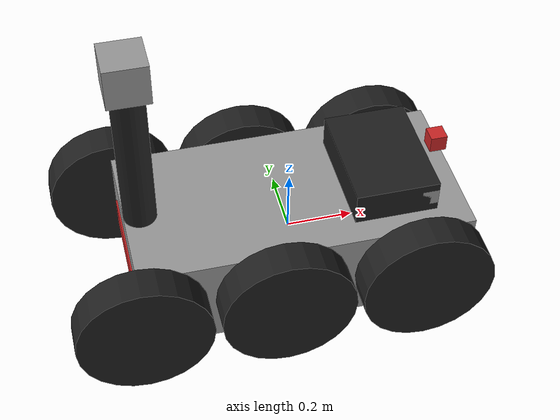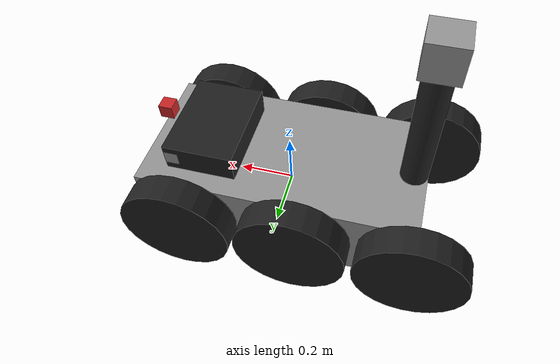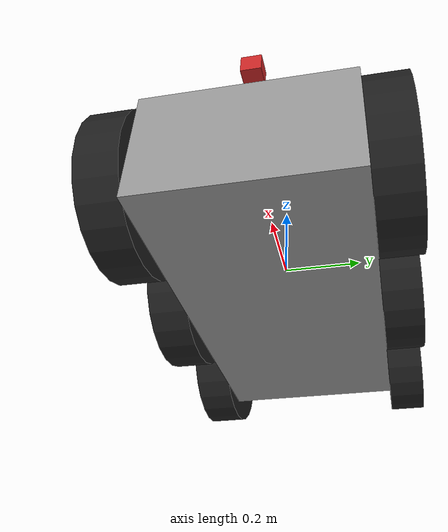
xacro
<?xml version='1.0'?>

<robot name="moor" xmlns:xacro="http://www.ros.org/wiki/xacro">
<xacro:property name="cameraSize" value="0.05"/>
<xacro:property name="DSLRcameraSize" value="0.124"/>
<xacro:property name="cameraMass" value="0.05"/>

<xacro:macro name="default_inertia">
      <inertia ixx="0.001" ixy="0.0" ixz="0.0" iyy="0.001" iyz="0.0" izz="0.001"/>
</xacro:macro>

<xacro:macro name="default_inertia_servos">
      <inertia ixx="0.01" ixy="0.0" ixz="0.0" iyy="0.01" iyz="0.0" izz="0.01"/>
</xacro:macro>

<xacro:macro name="default_limit">
    <limit effort="100.0" lower="-2.62" upper="2.62" velocity="3"/>
</xacro:macro>

<xacro:macro name="default_dynamics">
      <dynamics fricction="0" damping="0" />
</xacro:macro>

  <xacro:include filename="$(find mybot_gazebo)/urdf/mybot.gazebo" />
  <xacro:include filename="$(find mybot_gazebo)/urdf/materials.xacro" />
  <xacro:include filename="$(find mybot_gazebo)/urdf/macros.xacro" />

 <!-- Base Size -->
  <xacro:property name="base_x_size" value="1" />
  <xacro:property name="base_y_size" value="0.5" />
  <xacro:property name="base_z_size" value="0.3" />

  <!-- Wheel Mounting Positions -->
  <xacro:property name="wheelbase" value="0.5120" />
  <xacro:property name="track" value="0.5708" />
  <xacro:property name="wheel_vertical_offset" value="0.03282" />

  <!-- Wheel Properties -->
  <xacro:property name="wheel_length" value="0.1" />
  <xacro:property name="wheel_radius" value="0.2" />
  <link name='base_link'>
    <pose>0 0 0.1 0 0 0</pose>

    <inertial>
      <mass value="15.0"/>
      <origin xyz="0.0 0 0.1" rpy=" 0 0 0"/>
      <inertia
         ixx="0.4233" ixy="0.0" ixz="-0.0" iyy="1.35705" iyz="-0.0" izz="1.55625"
      />
    </inertial>

    <collision name='collision'>
      <geometry>
        <box size="1 .5 .3"/>
      </geometry>
    </collision>

    <visual name='base_link_visual'>
      <origin xyz="0 0 0" rpy=" 0 0 0"/>
      <geometry>
        <box size="1 .5 .3"/>
      </geometry>
        <material name="grey"/>
    </visual>
  </link>

    <!-- Base footprint is on the ground under the robot -->
    <link name="base_footprint"/>

    <joint name="base_footprint_joint" type="fixed">
      <origin xyz="0 0 ${wheel_vertical_offset - wheel_radius}" rpy="0 0 0" />
      <parent link="base_link" />
      <child link="base_footprint" />
    </joint>

    <!-- Interial link stores the robot's inertial information -->
    <link name="inertial_link">
      <inertial>
        <mass value="0.0"/>
        <origin xyz="0 0 0" />
        <inertia ixx="1" ixy="0" ixz="0" iyy="1" iyz="0" izz="1" />
      </inertial>
    </link>

    <joint name="inertial_joint" type="fixed">
      <origin xyz="0 0 0" rpy="0 0 0" />
      <parent link="base_link" />
      <child link="inertial_link" />
    </joint>

  <link name="medium_left_wheel">
    <origin xyz="0 0.3 0.1" rpy="0 1.5707 1.5707"/>
    <collision name="collision">
      <origin xyz="0 0 0" rpy="0 1.5707 1.5707"/>
      <geometry>
        <cylinder radius="0.2" length="0.1"/>
      </geometry>
    </collision>
    <visual name="medium_left_wheel_visual">
      <origin xyz="0 0 0" rpy="0 1.5707 1.5707"/>
      <geometry>
        <cylinder radius="0.2" length="0.1"/>
      </geometry>
        <material name="black"/>
    </visual>
    <inertial>
      <origin xyz="0 0 0" rpy="0 1.5707 1.5707"/>
      <mass value="1"/>
      <cylinder_inertia m="5" r="0.2" h="0.1"/>
      <inertia
        ixx="1.0" ixy="0.0" ixz="0.0"
        iyy="1.0" iyz="0.0"
        izz="1.0"/>
    </inertial>
  </link>

  <link name="medium_right_wheel">
    <origin xyz="0 -0.3 0.1" rpy="0 1.5707 1.5707"/>
    <collision name="collision">
      <origin xyz="0 0 0" rpy="0 1.5707 1.5707"/>
      <geometry>
        <cylinder radius="0.2" length="0.1"/>
      </geometry>
    </collision>
    <visual name="medium_right_wheel_visual">
      <origin xyz="0 0 0" rpy="0 1.5707 1.5707"/>
      <geometry>
        <cylinder radius="0.2" length="0.1"/>
      </geometry>
        <material name="black"/>
    </visual>
    <inertial>
      <origin xyz="0 0 0" rpy="0 1.5707 1.5707"/>
      <mass value="1"/>
      <cylinder_inertia m="5" r="0.2" h="0.1"/>
      <inertia
        ixx="1.0" ixy="0.0" ixz="0.0"
        iyy="1.0" iyz="0.0"
        izz="1.0"/>
    </inertial>
  </link>

  <link name="front_left_wheel">
    <collision name="collision">
      <!--origin xyz="0 0 0" rpy="0 1.5707 1.5707"/-->
      <geometry>
        <cylinder radius="0.2" length="0.1"/>
      </geometry>
    </collision>
    <visual name="front_left_wheel_visual">
      <origin xyz="0 0 0" rpy="0 1.5707 1.5707"/>
      <geometry>
        <cylinder radius="0.2" length="0.1"/>
      </geometry>
        <material name="black"/>
    </visual>
    <inertial>
      <origin xyz="0 0 0" rpy="0 1.5707 1.5707"/>
      <mass value="1"/>
      <cylinder_inertia m="5" r="0.2" h="0.1"/>
      <inertia
        ixx="1.0" ixy="0.0" ixz="0.0"
        iyy="1.0" iyz="0.0"
        izz="1.0"/>
    </inertial>
  </link>

  <link name="front_right_wheel">
    <collision name="collision">
      <!--origin xyz="0 0 0" rpy="0 1.5707 1.5707"/-->
      <geometry>
        <cylinder radius="0.2" length="0.1"/>
      </geometry>
    </collision>
    <visual name="front_right_wheel_visual">
      <origin xyz="0 0 0" rpy="0 1.5707 1.5707"/>
      <geometry>
        <cylinder radius="0.2" length="0.1"/>
      </geometry>
        <material name="black"/>
    </visual>
    <inertial>
      <origin xyz="0 0 0" rpy="0 1.5707 1.5707"/>
      <mass value="1"/>
      <cylinder_inertia m="5" r="0.2" h="0.1"/>
      <inertia
        ixx="1.0" ixy="0.0" ixz="0.0"
        iyy="1.0" iyz="0.0"
        izz="1.0"/>
    </inertial>
  </link>

<link name="back_left_wheel">
    <!--origin xyz="0.1 0.13 0.1" rpy="0 1.5707 1.5707"/-->
    <collision name="collision">
      <origin xyz="0 0 0" rpy="0 1.5707 1.5707"/>
      <geometry>
        <cylinder radius="0.2" length="0.1"/>
      </geometry>
    </collision>
    <visual name="back_left_wheel_visual">
      <origin xyz="0 0 0" rpy="0 1.5707 1.5707"/>
      <geometry>
        <cylinder radius="0.2" length="0.1"/>
      </geometry>
        <material name="black"/>
    </visual>
    <inertial>
      <origin xyz="0 0 0" rpy="0 1.5707 1.5707"/>
      <mass value="1"/>
      <cylinder_inertia m="5" r="0.2" h="0.1"/>
      <inertia
        ixx="1.0" ixy="0.0" ixz="0.0"
        iyy="1.0" iyz="0.0"
        izz="1.0"/>
    </inertial>
  </link>

  <link name="back_right_wheel">
    <!--origin xyz="0.1 -0.13 0.1" rpy="0 1.5707 1.5707"/-->
    <collision name="collision">
      <origin xyz="0 0 0" rpy="0 1.5707 1.5707"/>
      <geometry>
        <cylinder radius="0.2" length="0.1"/>
      </geometry>
    </collision>
    <visual name="back_right_wheel_visual">
      <origin xyz="0 0 0" rpy="0 1.5707 1.5707"/>
      <geometry>
        <cylinder radius="0.2" length="0.1"/>
      </geometry>
      <material name="black"/>
    </visual>
    <inertial>
      <origin xyz="0 0 0" rpy="0 1.5707 1.5707"/>
      <mass value="1"/>
      <cylinder_inertia m="5" r="0.2" h="0.1"/>
      <inertia
        ixx="1.0" ixy="0.0" ixz="0.0"
        iyy="1.0" iyz="0.0"
        izz="1.0"/>
    </inertial>
</link>

  <link name="tripod_link">
    <!--origin xyz="0.1 -0.13 0.1" rpy="0 1.5707 1.5707"/-->
    <collision name="collision">
      <origin xyz="0 0 0" rpy="0 0 0"/>
      <geometry>
        <cylinder radius="0.05" length="0.5"/>
      </geometry>
    </collision>
    <visual name="tripod_visual">
      <origin xyz="0 0 0" rpy="0 0 0"/>
      <geometry>
        <cylinder radius="0.05" length="0.5"/>
      </geometry>
      <material name="black"/>
    </visual>
    <inertial>
      <origin xyz="0 0 0" rpy="0 0 0"/>
      <mass value="1"/>
      <cylinder_inertia m="5" r="0.05" h="0.5"/>
      <inertia
        ixx="1.0" ixy="0.0" ixz="0.0"
        iyy="1.0" iyz="0.0"
        izz="1.0"/>
    </inertial>
</link>

 <joint type="continuous" name="medium_left_wheel_hinge">
    <origin xyz="-0.08 0.3 0" rpy="0 0 0"/>
    <child link="medium_left_wheel"/>
    <parent link="base_link"/>
    <axis xyz="0 1 0" rpy="0 0 0"/>
    <limit effort="100" velocity="100"/>
    <joint_properties damping="0.0" friction="0.0"/>
  </joint>

 <joint type="continuous" name="medium_right_wheel_hinge">
    <origin xyz="-0.08 -0.3 0" rpy="0 0 0"/>
    <child link="medium_right_wheel"/>
    <parent link="base_link"/>
    <axis xyz="0 1 0" rpy="0 0 0"/>
    <limit effort="100" velocity="100"/>
    <joint_properties damping="0.0" friction="0.0"/>
  </joint>

  <joint type="continuous" name="front_left_wheel_hinge">
    <origin xyz="0.34 0.3 0" rpy="0 0 0"/>
    <child link="front_left_wheel"/>
    <parent link="base_link"/>
    <axis xyz="0 1 0" rpy="0 0 0"/>
    <limit effort="100" velocity="100"/>
    <joint_properties damping="0.0" friction="0.0"/>
  </joint>
  <joint type="continuous" name="front_right_wheel_hinge">
    <origin xyz="0.34 -0.3 0" rpy="0 0 0"/>
    <child link="front_right_wheel"/>
    <parent link="base_link"/>
    <axis xyz="0 1 0" rpy="0 0 0"/>
    <limit effort="100" velocity="100"/>
    <joint_properties damping="0.0" friction="0.0"/>
  </joint>

  <joint type="continuous" name="back_left_wheel_hinge">
    <origin xyz="-0.5 0.3 0" rpy="0 0 0"/>
    <child link="back_left_wheel"/>
    <parent link="base_link"/>
    <axis xyz="0 1 0" rpy="0 0 0"/>
    <limit effort="100" velocity="100"/>
    <joint_properties damping="0.0" friction="0.0"/>
  </joint>

 <joint type="continuous" name="back_right_wheel_hinge">
    <origin xyz="-0.5 -0.3 0" rpy="0 0 0"/>
    <child link="back_right_wheel"/>
    <parent link="base_link"/>
    <axis xyz="0 1 0" rpy="0 0 0"/>
    <limit effort="100" velocity="100"/>
    <joint_properties damping="0.0" friction="0.0"/>
  </joint>
<link name="left_camera">
    <collision>
    <origin xyz="0 0 0" rpy="0 0 0"/>
    <geometry>
      <box size="${cameraSize} ${cameraSize} ${cameraSize}"/>
    </geometry>
    </collision>

    <visual>
    <origin xyz="0 0 0" rpy="0 0 0"/>
    <geometry>
      <box size="${cameraSize} ${cameraSize} ${cameraSize}"/>
    </geometry>
    <material name="grey"/>
    </visual>

    <inertial>
       <mass value="${cameraMass}" />
       <origin xyz="0 0 0" rpy="0 0 0" />
       <box_inertia m="${cameraMass}" x= "${cameraSize}" y="${cameraSize}" z="${cameraSize}" />
       <inertia ixx="1e-6" ixy="0" ixz="0" iyy="1e-6" iyz="0" izz="1e-6" />
    </inertial>
</link>
<link name="DSLR_camera_link">
    <collision>
    <origin xyz="0 0 0" rpy="0 0 0"/>
    <geometry>
      <!--mesh filename="/home/ali/mybot_ws/src/moor_description/meshes/DSLR.dae"/-->
      <box size="${DSLRcameraSize} ${DSLRcameraSize} ${DSLRcameraSize}"/>
    </geometry>
    </collision>
    <visual>
    <origin xyz="0 0 0" rpy="0 0 0"/>
    <geometry>
      <!--mesh filename="/home/ali/mybot_ws/src/moor_description/meshes/DSLR.dae"/-->
      <box size="${DSLRcameraSize} ${DSLRcameraSize} ${DSLRcameraSize}"/>
    </geometry>
    <material name="grey"/>
    </visual>

    <inertial>
       <mass value="${cameraMass}" />
       <origin xyz="0 0 0" rpy="0 0 0" />
       <box_inertia m="${cameraMass}" x= "${cameraSize}" y="${cameraSize}" z="${cameraSize}" />
       <inertia ixx="1e-6" ixy="0" ixz="0" iyy="1e-6" iyz="0" izz="1e-6" />
    </inertial>
</link>

<link name="right_camera">
    <collision>
    <origin xyz="0 0 0" rpy="0 0 0"/>
    <geometry>
      <box size="${cameraSize} ${cameraSize} ${cameraSize}"/>
    </geometry>
    </collision>

    <visual>
    <origin xyz="0 0 0" rpy="0 0 0"/>
    <geometry>
      <box size="${cameraSize} ${cameraSize} ${cameraSize}"/>
    </geometry>
    <material name="grey"/>
    </visual>

    <inertial>
       <mass value="${cameraMass}" />
       <origin xyz="0 0 0" rpy="0 0 0" />
       <box_inertia m="${cameraMass}" x= "${cameraSize}" y="${cameraSize}" z="${cameraSize}" />
       <inertia ixx="1e-6" ixy="0" ixz="0" iyy="1e-6" iyz="0" izz="1e-6" />
    </inertial>
</link>
<link name="stereocamera_baselink">
    <collision>
    <origin xyz="0 0 0" rpy="0 0 0"/>
    <geometry>
      <box size="0.25 .35 0.1"/>
    </geometry>
    </collision>

    <visual>
    <origin xyz="0 0 0" rpy="0 0 0"/>
    <geometry>
      <box size="0.25 0.35 0.1"/>
    </geometry>
    <material name="black"/>
    </visual>

    <inertial>
       <mass value="0.1" />
       <origin xyz="0 0 0" rpy="0 0 0" />
       <box_inertia m="0.1" x= "0.035" y="0.025" z="0.01" />
       <inertia ixx="1e-6" ixy="0" ixz="0" iyy="1e-6" iyz="0" izz="1e-6" />
    </inertial>
</link>

    <link name="imu_link">
        <collision>
            <origin xyz="0 0 0" rpy="0 0 0"/>
            <geometry>
                <box size="0.02 0.02 0.02"/>
            </geometry>
        </collision>
        <visual>
            <origin xyz="0 0 0" rpy="0 0 0"/>
            <geometry>
                <box size="0.02 0.02 0.02"/>
            </geometry>
            <material name="red"/>
        </visual>
        <inertial>
            <mass value="0.001" />
            <origin xyz="0 0 0" rpy="0 0 0"/>
            <inertia ixx="0.00000015" ixy="0" ixz="0" iyy="0.00000015" iyz="0" izz="0.00000015" />
        </inertial>
</link>

<joint name="imu_joint" type="fixed">
  <axis xyz="0 1 0" />
  <origin xyz="0 0 0" rpy="0 0 0"/>
  <parent link="stereocamera_baselink"/>
  <child link="imu_link"/>
</joint>

<joint name="stereocamera_baselink_joint" type="fixed">
  <axis xyz="0 1 0" />
  <origin xyz="0.28 0 0.2" rpy="0 0 0"/>
  <parent link="base_link"/>
  <child link="stereocamera_baselink"/>
</joint>

<joint name="tripod_joint" type="fixed">
  <axis xyz="0 1 0" />
  <origin xyz="-0.45 0 0.4" rpy="0 0 0"/>
  <parent link="base_link"/>
  <child link="tripod_link"/>
</joint>

<joint name="DSLR_camera_joint" type="fixed">
  <axis xyz="0 1 0" />
  <origin xyz="0 0 0.28" rpy="0 0 1.5707"/>
  <parent link="tripod_link"/>
  <child link="DSLR_camera_link"/>
</joint>

<joint name="left_camera_joint" type="fixed">
  <axis xyz="0 1 0" />
  <origin xyz="0.1 0.15 0" rpy="0 0 0"/>
  <parent link="stereocamera_baselink"/>
  <child link="left_camera"/>
</joint>

<joint name="right_camera_joint" type="fixed">
  <axis xyz="0 1 0" />
  <origin xyz="0.1 -0.15 0" rpy="0 0 0"/>
  <parent link="stereocamera_baselink"/>
  <child link="right_camera"/>
</joint>

  <joint name="base_laser_joint" type="fixed">
    <axis xyz="0 1 0" />
    <origin xyz=".45 0 0.26" rpy="0 0 0"/>
    <parent link="base_link"/>
    <child link="base_laser"/>
  </joint>

  <!-- Hokuyo Laser -->
  <link name="base_laser">
    <collision>
      <origin xyz="0 0 0" rpy="0 0 0"/>
      <geometry>
        <!--mesh filename="/home/ali/mybot_ws/src/moor_description/meshes/hokuyo.dae"/-->
        <box size="0.05 0.05 0.05"/>
      </geometry>
     <material name="red"/>
    </collision>

    <visual>
    <origin xyz="0 0 0" rpy="0 0 0"/>
      <geometry>
        <!--mesh filename="/home/ali/mybot_ws/src/moor_description/meshes/hokuyo.dae"/-->
        <box size="0.05 0.05 0.05"/>
      </geometry>
    <material name="red"/>
    </visual>

    <inertial>
      <mass value="1e-5" />
      <origin xyz="0 0 0" rpy="0 0 0"/>
      <inertia ixx="1e-6" ixy="0" ixz="0" iyy="1e-6" iyz="0" izz="1e-6" />
    </inertial>
</link>

<link name="mainboard">
    <collision>
    <origin xyz="0 -0.4 0" rpy="0 0 0"/>
    <geometry>
      <box size="0.25 .35 0.1"/>
    </geometry>
    </collision>

    <visual>
    <origin xyz="0 0 0" rpy="0 0 0"/>
    <geometry>
      <box size="0.25 0.35 0.1"/>
    </geometry>
    <material name="red"/>
    </visual>

    <inertial>
       <mass value="6" />
       <origin xyz="0 0 0" rpy="0 0 0" />
        <box_inertia m="6" x= "0.25" y="0.35" z="0.1" />
       <inertia ixx="1e-6" ixy="0" ixz="0" iyy="1e-6" iyz="0" izz="1e-6" />
    </inertial>
</link>

<joint name="mainboard_joint" type="fixed">
  <axis xyz="0 1 0" />
  <origin xyz="-0.38 0 0" rpy="0 0 0"/>
  <parent link="base_link"/>
  <child link="mainboard"/>
</joint>
</robot>
